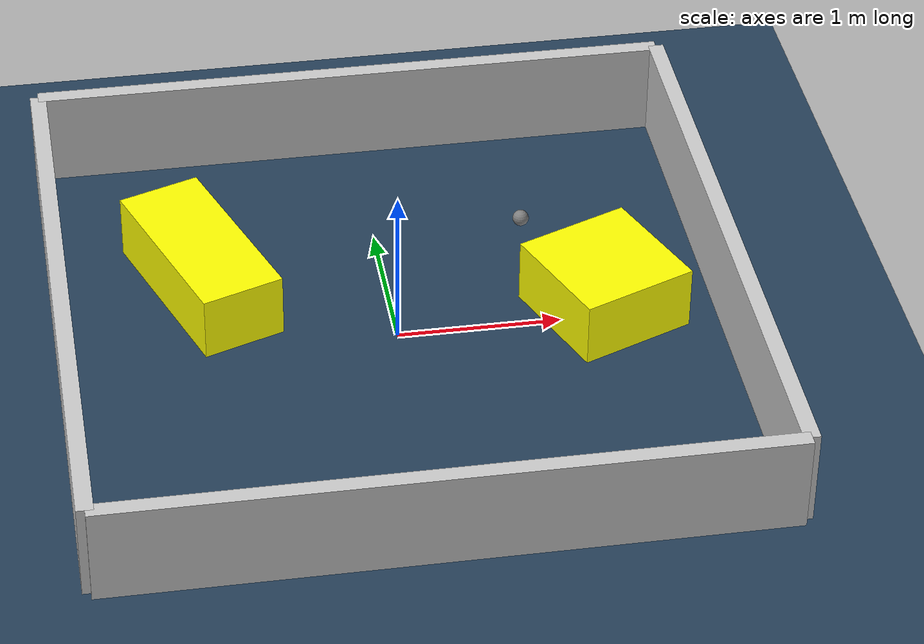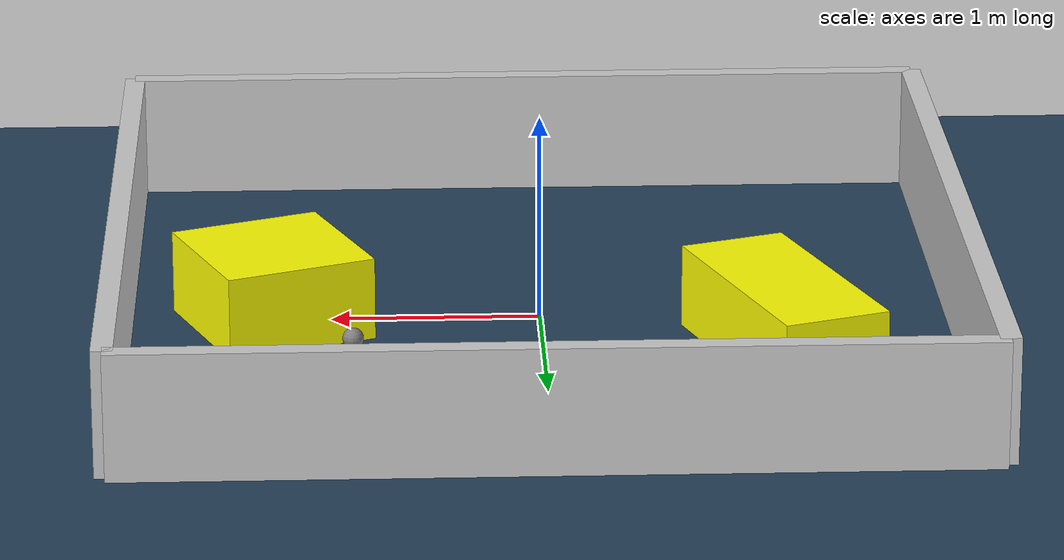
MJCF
<?xml version="1.0" ?>
<mujoco model="generated_environment">
  <option timestep="0.01" integrator="RK4" cone="elliptic"/>
  <default>
    <geom density="1"/>
  </default>
  <asset>
    <texture builtin="gradient" height="3072" rgb1="0.3 0.5 0.7" rgb2="0 0 0" type="skybox" width="512"/>
    <texture builtin="checker" height="300" mark="edge" markrgb="0.8 0.8 0.8" name="groundplane" rgb1="0.2 0.3 0.4" rgb2="0.1 0.2 0.3" type="2d" width="300"/>
    <material name="groundplane" reflectance="0.2" texrepeat="5 5" texture="groundplane" texuniform="true"/>
    <material name="robot" rgba="0.0 1.0 0.0 1"/>
  </asset>
  <worldbody>
    <light dir="0 0 -1" directional="true" pos="0 0 1.5"/>
    <geom condim="4" friction="1.0 0.005 0.001" material="groundplane" name="floor" size="0 0 0.05" type="plane"/>
    <body name="walls">
      <geom name="wall_1" condim="4" pos="-2.0 0.0 0.3" rgba="0.800000011920929 0.800000011920929 0.800000011920929 1.0" size="0.05 2.0 0.3" type="box"/>
      <geom name="wall_2" condim="4" pos="2.0 0.0 0.3" rgba="0.800000011920929 0.800000011920929 0.800000011920929 1.0" size="0.05 2.0 0.3" type="box"/>
      <geom name="wall_3" condim="4" pos="0.0 -2.0 0.3" rgba="0.800000011920929 0.800000011920929 0.800000011920929 1.0" size="2.0 0.05 0.3" type="box"/>
      <geom name="wall_4" condim="4" pos="0.0 2.0 0.3" rgba="0.800000011920929 0.800000011920929 0.800000011920929 1.0" size="2.0 0.05 0.3" type="box"/>
    </body>
    <body name="robot">
      <joint name="joint_x" type="slide" pos="0 0 0" axis="1 0 0"/>
      <joint name="joint_y" type="slide" pos="0 0 0" axis="0 1 0"/>
      <geom name="robot" type="sphere" pos="0.8975777486982399 0.8028042794941426 0.2" size="0.05" mass="5." friction="1.0 0.005 0.0001" condim="4"/>
      <site name="sensor_ball"/>
    </body>
    <body name="obstacle_1_movable">
      <geom name="obstacle_1_movable" condim="4" pos="-1.1196486660009415 0.6133466009113717 0.2" euler="0 0 289.7573938706086" friction="1.0 0.005 0.001" rgba="1 1 0 1" size="0.5955744575934452 0.2602124091978465 0.2" type="box" mass="0.1"/>
      <joint type="free"/>
    </body>
    <body name="obstacle_2_movable">
      <geom name="obstacle_2_movable" condim="4" pos="1.2758392411167188 0.054944001269925824 0.2" euler="0 0 292.0902727484329" friction="1.0 0.005 0.001" rgba="1 1 0 1" size="0.3785548947507691 0.36953403827722375 0.2" type="box" mass="0.1"/>
      <joint type="free"/>
    </body>
  </worldbody>
  <actuator>
    <motor name="actuator_x" joint="joint_x" gear="1" ctrlrange="-1 1"/>
    <motor name="actuator_y" joint="joint_y" gear="1" ctrlrange="-1 1"/>
  </actuator>
</mujoco>
